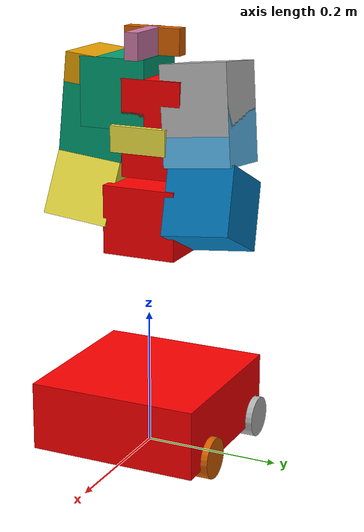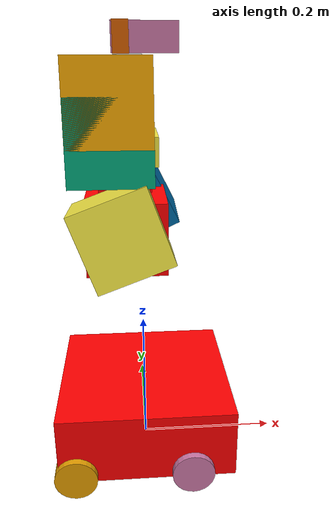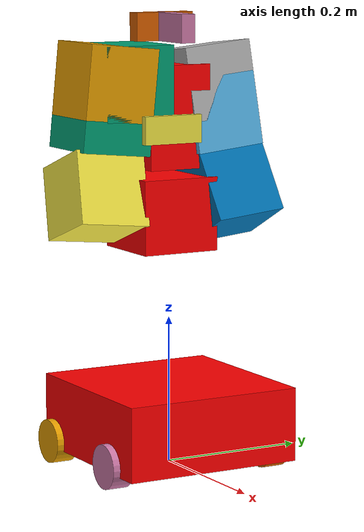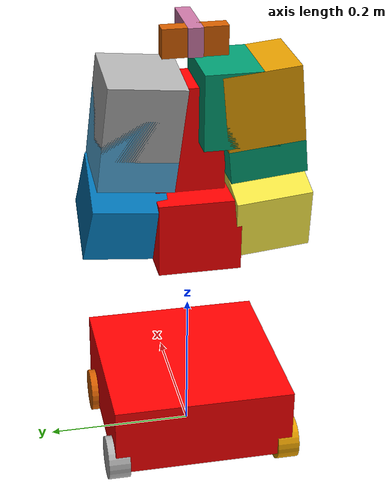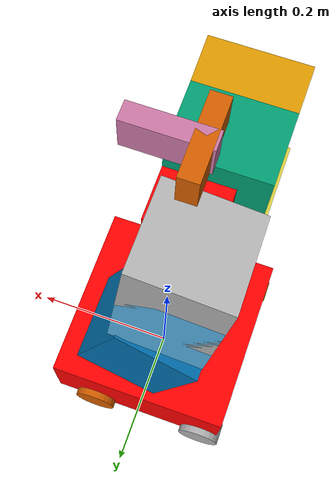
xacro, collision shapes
<?xml version="1.0" ?>
<robot name="ros_cassandra" xmlns:xacro="http://www.ros.org/wiki/xacro">

    <xacro:include filename="$(find ros_cassandra_description)/urdf/base_urdf.xacro" />

    <ros2_control name="camera_controller" type="system">
      <hardware>
        <plugin>ros_cassandra_hardware/SystemPositionOnlyHardware</plugin>
        <param name="example_param_hw_start_duration_sec">0</param>
        <param name="example_param_hw_stop_duration_sec">3.0</param>
        <param name="example_param_hw_slowdown">10</param>
      </hardware>

      <joint name="camera_servo_first_joint">
        <command_interface name="position">
          <param name="min">-1</param>
          <param name="max">1</param>
        </command_interface>
        <state_interface name="position"/>
      </joint>
      <joint name="camera_servo_second_joint">
        <command_interface name="position">
          <param name="min">-1</param>
          <param name="max">1</param>
        </command_interface>
        <state_interface name="position"/>
      </joint>
    </ros2_control>

    <ros2_control name="diff_drive_controller" type="system">
        <hardware>
          <plugin>mock_components/GenericSystem</plugin>
          <param name="calculate_dynamics">true</param>
        </hardware>
      <joint name="joint_left_wheel">
        <command_interface name="velocity"/>
        <state_interface name="position"/>
        <state_interface name="velocity"/>
      </joint>
      <joint name="joint_right_wheel">
        <command_interface name="velocity"/>
        <state_interface name="position"/>
        <state_interface name="velocity"/>
      </joint>
    </ros2_control>

</robot>

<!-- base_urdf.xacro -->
<robot xmlns:xacro="http://www.ros.org/wiki/xacro">
    <xacro:arg
        name="mesh_base_url"
        default="package://ros_cassandra_description/meshes"
    />
    <link name="base_link"></link>

    <!-- Link - chassis -->
    <link name="link_chassis">
        <visual>
            <origin xyz="-0.065 -0.013 0.2" rpy="1.57 0 1.57"/>
            <geometry>
                <mesh filename="$(arg mesh_base_url)/body.stl" scale="0.00111 0.00111 0.0011"/>
            </geometry>
            <material name="Red">
                <color rgba="1 0 0 1" />
            </material>
        </visual>

        <collision>
            <origin xyz="0 0 -0.08" rpy="0 0 0"/>
            <geometry>
                <box size="0.25 0.25 0.1" />
            </geometry>
        </collision>

        <inertial>
            <mass value="10"/>
            <origin rpy="0 0 0" xyz="0 0 0"/>
            <inertia ixx="0.1" ixy="0" ixz="0" iyy="0.1" iyz="0" izz="0.1"/>
        </inertial>
    </link>

    <joint name="base_link_joint" type="fixed">
        <origin rpy="0 0 0" xyz="0 0 0.142" />
        <parent link="base_link" />
        <child link="link_chassis" />
    </joint>

    <link name="lower_torso">
        <visual>
            <origin xyz="-0.07 -0.013 -0.02" rpy="1.57 0 1.57"/>
            <geometry>
                <mesh filename="$(arg mesh_base_url)/lower_torso.stl" scale="0.00111 0.00111 0.0011"/>
            </geometry>
            <material name="Black">
                <color rgba="1 0 0 1" />
            </material>
        </visual>

        <collision>
            <origin xyz="-0.02 0 -0.02" rpy="0 0 0"/>
            <geometry>
                <box size="0.11 0.11 0.1" />
            </geometry>
        </collision>

        <inertial>
            <mass value="10"/>
            <origin rpy="0 0 0" xyz="0 0 0"/>
            <inertia ixx="0.1" ixy="0" ixz="0" iyy="0.1" iyz="0" izz="0.1"/>
        </inertial>
    </link>

    <joint name="lower_torso_joint" type="fixed">
        <origin rpy="0 0 0" xyz="0 0 0.22" />
        <parent link="link_chassis" />
        <child link="lower_torso" />
    </joint>

     <link name="upper_torso">
        <visual>
            <origin xyz="-0.13 0 -0.042" rpy="0 0 -1.57"/>
            <geometry>
                <mesh filename="$(arg mesh_base_url)/upper_torso.stl" scale="0.00111 0.00111 0.0011"/>
            </geometry>
            <material name="Black">
                <color rgba="1 0 0 1" />
            </material>
        </visual>

        <collision>
            <origin xyz="0 0.01 0.11" rpy="0 0 0"/>
            <geometry>
                <box size="0.07 0.09 0.14" />
            </geometry>
        </collision>

        <inertial>
            <mass value="10"/>
            <origin rpy="0 0 0" xyz="0 0 0"/>
            <inertia ixx="0.1" ixy="0" ixz="0" iyy="0.1" iyz="0" izz="0.1"/>
        </inertial>
    </link>

    <joint name="upper_torso_joint" type="revolute">
        <origin xyz="-0.02 0 0" rpy="0 0 0"/>
        <parent link="lower_torso"/>
        <child link="upper_torso"/>
        <axis xyz="0 0 1"/>
        <limit lower="-1.15" upper="1.4" velocity="100" effort="100"/>
    </joint>

    <!-- Joint - pointcloud -->
    <joint name="pointcloud_link_joint" type="fixed">
        <origin rpy="0 0 0" xyz="0.051 0.0 0"/>
        <parent link="link_chassis"/>
        <child link="pointcloud_link"/>
        <axis xyz="0 0 0"/>
    </joint>

    <!-- Link - pointcloud -->
    <link name="pointcloud_link"></link>

    <!-- Joint - left wheel -->
    <joint name="joint_front_left_wheel" type="continuous">
        <origin rpy="0 0 0" xyz="0.064 0.12 -0.12"/>
        <child link="left_front_wheel"/>
        <parent link="link_chassis"/>
        <axis rpy="0 0 0" xyz="0 1 0"/>
        <limit effort="10000" velocity="1000"/>
        <joint_properties damping="1.0" friction="1.0"/>
    </joint>

    <!-- Link - left wheel -->
    <link name="left_front_wheel">
        <visual>
            <origin rpy="0 0 0" xyz="0 0 0"/>
            <geometry>
            <mesh filename="$(arg mesh_base_url)/wheel.stl" scale="0.00111 0.00111 0.0011"/>
            </geometry>
        </visual>

        <collision>
            <origin rpy="0 1.5707 1.5707" xyz="0 0 0"/>
            <geometry>
            <cylinder length="0.03" radius="0.03"/>
            </geometry>
        </collision>

        <inertial>
            <origin rpy="0 1.5707 1.5707" xyz="0 0 0"/>
            <mass value="0.05"/>
            <inertia ixx="1.531666666666667e-05" ixy="0" ixz="0" iyy="1.531666666666667e-05" iyz="0" izz="3.0625000000000006e-05"/>
        </inertial>
    </link>

    <!-- Joint - right wheel -->
    <joint name="joint_front_right_wheel" type="continuous">
        <origin rpy="0 0 0" xyz="0.064 -0.12 -0.12"/>
        <child link="right_front_wheel"/>
        <parent link="link_chassis"/>
        <axis rpy="0 0 0" xyz="0 1 0"/>
        <limit effort="10000" velocity="1000"/>
        <joint_properties damping="1.0" friction="1.0"/>
    </joint>

    <!-- Link - right wheel -->
    <link name="right_front_wheel">
        <visual>
            <origin rpy="0 0 0" xyz="0 0 0"/>
            <geometry>
            <mesh filename="$(arg mesh_base_url)/wheel.stl" scale="0.00111 0.00111 0.0011"/>
            </geometry>
        </visual>

        <collision>
            <origin rpy="0 1.5707 1.5707" xyz="0 0 0"/>
            <geometry>
            <cylinder length="0.03" radius="0.03"/>
            </geometry>
        </collision>

        <inertial>
            <origin rpy="0 1.5707 1.5707" xyz="0 0 0"/>
            <mass value="0.05"/>
            <inertia ixx="1.531666666666667e-05" ixy="0" ixz="0" iyy="1.531666666666667e-05" iyz="0" izz="3.0625000000000006e-05"/>
        </inertial>
    </link>

    <!-- Joint - left wheel -->
    <joint name="joint_rear_left_wheel" type="continuous">
        <origin rpy="0 0 0" xyz="-0.1 0.12 -0.12"/>
        <child link="left_rear_wheel"/>
        <parent link="link_chassis"/>
        <axis rpy="0 0 0" xyz="0 1 0"/>
        <limit effort="10000" velocity="1000"/>
        <joint_properties damping="1.0" friction="1.0"/>
    </joint>

    <!-- Link - left wheel -->
    <link name="left_rear_wheel">
        <visual>
            <origin rpy="0 0 0" xyz="0 0 0"/>
            <geometry>
            <mesh filename="$(arg mesh_base_url)/wheel.stl" scale="0.00111 0.00111 0.0011"/>
            </geometry>
        </visual>

        <collision>
            <origin rpy="0 1.5707 1.5707" xyz="0 0 0"/>
            <geometry>
            <cylinder length="0.03" radius="0.03"/>
            </geometry>
        </collision>

        <inertial>
            <origin rpy="0 1.5707 1.5707" xyz="0 0 0"/>
            <mass value="0.05"/>
            <inertia ixx="1.531666666666667e-05" ixy="0" ixz="0" iyy="1.531666666666667e-05" iyz="0" izz="3.0625000000000006e-05"/>
        </inertial>
    </link>

    <!-- Joint - right wheel -->
    <joint name="joint_rear_right_wheel" type="continuous">
        <origin rpy="0 0 0" xyz="-0.1 -0.12 -0.12"/>
        <child link="right_rear_wheel"/>
        <parent link="link_chassis"/>
        <axis rpy="0 0 0" xyz="0 1 0"/>
        <limit effort="10000" velocity="1000"/>
        <joint_properties damping="1.0" friction="1.0"/>
    </joint>

    <!-- Link - right wheel -->
    <link name="right_rear_wheel">
        <visual>
            <origin rpy="0 0 0" xyz="0 0 0"/>
            <geometry>
            <mesh filename="$(arg mesh_base_url)/wheel.stl" scale="0.00111 0.00111 0.0011"/>
            </geometry>
        </visual>

        <collision>
            <origin rpy="0 1.5707 1.5707" xyz="0 0 0"/>
            <geometry>
            <cylinder length="0.03" radius="0.03"/>
            </geometry>
        </collision>

        <inertial>
            <origin rpy="0 1.5707 1.5707" xyz="0 0 0"/>
            <mass value="0.05"/>
            <inertia ixx="1.531666666666667e-05" ixy="0" ixz="0" iyy="1.531666666666667e-05" iyz="0" izz="3.0625000000000006e-05"/>
        </inertial>
    </link>

    <joint name="left_shoulder_joint" type="revolute">
        <origin xyz="-0.016 0.048 0.157" rpy="0 3.14 0"/>
        <parent link="upper_torso"/>
        <child link="left_shoulder"/>
        <axis xyz="0 1 0"/>
        <limit lower="-1.15" upper="1.4" velocity="100" effort="100"/>
    </joint>

    <link name="left_shoulder">
        <collision>
            <origin xyz="0 0 0.01" rpy="0 0 0"/>
            <geometry>
                <box size="0.02 0.03 0.03" />
            </geometry>
        </collision>
        <visual>
            <origin xyz="-0.135 -0.005 0.238" rpy="3.25 0 0"/>
            <geometry>
                <mesh filename="$(arg mesh_base_url)/shoulder_base.stl" pose="0 0 0" scale="0.0011 0.00111 0.0011"/>
            </geometry>
        </visual>
        <inertial>
            <origin rpy="0 1.5707 1.5707" xyz="0 0 0"/>
            <mass value="0.05"/>
            <inertia ixx="1.531666666666667e-05" ixy="0" ixz="0" iyy="1.531666666666667e-05" iyz="0" izz="3.0625000000000006e-05"/>
        </inertial>
    </link>

    <joint name="right_shoulder_joint" type="revolute">
        <origin xyz="-0.015 -0.05 0.157" rpy="0 0 0"/>
        <parent link="upper_torso"/>
        <child link="right_shoulder"/>
        <axis xyz="0 1 0"/>
        <limit lower="-1.15" upper="1.4" velocity="100" effort="100"/>
    </joint>

    <link name="right_shoulder">
        <collision>
            <origin xyz="0 0 0" rpy="0 0 0"/>
            <geometry>
                <box size="0.1 0.1 0.1" />
            </geometry>
        </collision>
        <visual>
            <origin xyz="0.112 0.02 0.244" rpy="0.16 3.05 0"/>
            <geometry>
                <mesh filename="$(arg mesh_base_url)/shoulder_base.stl" pose="0 0 0" scale="0.0011 0.00111 0.0011"/>
            </geometry>
        </visual>
        <inertial>
            <origin rpy="0 1.5707 1.5707" xyz="0 0 0"/>
            <mass value="0.05"/>
            <inertia ixx="1.531666666666667e-05" ixy="0" ixz="0" iyy="1.531666666666667e-05" iyz="0" izz="3.0625000000000006e-05"/>
        </inertial>
    </link>

    <joint name="camera_joint" type="fixed">
        <parent link="upper_torso"/>
        <child link="camera_link"/>
        <origin xyz="0.034 -0.006 0.095" rpy="0 0 0"/>
    </joint>

    <link name="camera_link">
        <collision>
            <origin xyz="0 0 0" rpy="0 0 0"/>
            <geometry>
                <box size="0.02 0.085 0.038"/>
            </geometry>
        </collision>
        <visual>
            <origin rpy="0 3.14 -1.57" xyz="-0.22 -0.02 -0.04"/>
            <geometry>
                <mesh filename="$(arg mesh_base_url)/camera.stl" pose="0 0 0" scale="0.00111 0.00111 0.0011"/>
            </geometry>
        </visual>
        <inertial>
            <origin rpy="0 0 1.5707" xyz="0 0 0"/>
            <mass value="0.05"/>
            <inertia ixx="1.531666666666667e-05" ixy="0" ixz="0" iyy="1.531666666666667e-05" iyz="0" izz="3.0625000000000006e-05"/>
        </inertial>
    </link>

    <joint name="head_yaw_joint" type="revolute">
        <parent link="upper_torso"/>
        <child link="head_yaw_link"/>
        <origin xyz="0 0 0.23" rpy="0 0 0"/>
        <axis xyz="0 0 1"/>
        <limit lower="-1.0" upper="1.0" velocity="2.0" effort="20"/>
    </joint>

    <link name="head_yaw_link">
        <inertial>
            <origin xyz="0 0 0" rpy="0 0 0"/>
            <mass value="0.001"/>
            <inertia ixx="0.000001" ixy="0" ixz="0"
                     iyy="0.000001" iyz="0" izz="0.000001"/>
        </inertial>
    </link>

    <joint name="head_pitch_joint" type="revolute">
        <parent link="head_yaw_link"/>
        <child link="head_link"/>
        <origin xyz="0 0 0" rpy="0 0 0"/>
        <axis xyz="0 1 0"/>
        <limit lower="-0.8" upper="0.8" velocity="2.0" effort="20"/>
    </joint>

    <link name="head_link">
        <collision>
            <origin xyz="0 0 0" rpy="0 0 0"/>
            <geometry>
                <box size="0.02 0.085 0.038"/>
            </geometry>
        </collision>
        <visual>
            <origin rpy="1.57 0 1.57" xyz="-0.08 -0.013 -0.31"/>
            <geometry>
                <mesh filename="$(arg mesh_base_url)/head.stl" pose="0 0 0" scale="0.00111 0.00111 0.0011"/>
            </geometry>
        </visual>
        <inertial>
            <origin rpy="0 0 1.5707" xyz="0 0 0"/>
            <mass value="0.05"/>
            <inertia ixx="1.531666666666667e-05" ixy="0" ixz="0" iyy="1.531666666666667e-05" iyz="0" izz="3.0625000000000006e-05"/>
        </inertial>
    </link>

    <joint name="screen_joint" type="fixed">
        <parent link="head_link"/>
        <child link="screen_link"/>
        <origin xyz="0.03 0 0" rpy="0 0 0"/>
    </joint>

    <link name="screen_link">
        <collision>
            <origin xyz="0 0 0" rpy="0 0 1.57"/>
            <geometry>
                <box size="0.02 0.085 0.038"/>
            </geometry>
        </collision>
        <visual>
            <origin rpy="0 0 1.57" xyz="0.2 0 0.22"/>
            <geometry>
                <mesh filename="$(arg mesh_base_url)/screen.stl" pose="0 0 0" scale="0.00111 0.00111 0.0011"/>
            </geometry>
        </visual>
        <inertial>
            <origin rpy="0 0 1.5707" xyz="0 0 0"/>
            <mass value="0.05"/>
            <inertia ixx="1.531666666666667e-05" ixy="0" ixz="0" iyy="1.531666666666667e-05" iyz="0" izz="3.0625000000000006e-05"/>
        </inertial>
    </link>

    <joint name="left_shoulder_low_joint" type="revolute">
        <origin xyz="0 0.027 0.005" rpy="-0.1 -0.1 0"/>
        <parent link="left_shoulder"/>
        <child link="left_shoulder_low"/>
        <axis xyz="1 0 0"/>
        <limit lower="-2.2" upper="0" velocity="100" effort="100"/>
    </joint>

    <link name="left_shoulder_low">
        <collision>
            <origin xyz="0 0 0" rpy="0 0 0"/>
            <geometry>
                <box size="0.1 0.1 0.1" />
            </geometry>
        </collision>
        <visual>
            <origin xyz="-0.004 -0.231 -0.126" rpy="-1.57 -1.57 0"/>
            <geometry>
                <mesh filename="$(arg mesh_base_url)/shoulder_low.stl" pose="0 0 0" scale="0.0011 0.00111 0.0011"/>
            </geometry>
        </visual>
        <inertial>
            <origin rpy="0 1.5707 1.5707" xyz="0 0 0"/>
            <mass value="0.05"/>
            <inertia ixx="1.531666666666667e-05" ixy="0" ixz="0" iyy="1.531666666666667e-05" iyz="0" izz="3.0625000000000006e-05"/>
        </inertial>
    </link>

    <joint name="right_shoulder_low_joint" type="revolute">
        <origin xyz="0 -0.027 0" rpy="-0.1 0 0"/>
        <parent link="right_shoulder"/>
        <child link="right_shoulder_low"/>
        <axis xyz="1 0 0"/>
        <limit lower="-2.2" upper="0" velocity="100" effort="100"/>
    </joint>

    <link name="right_shoulder_low">
        <collision>
            <origin xyz="0 0 0" rpy="0 0 0"/>
            <geometry>
                <box size="0.1 0.1 0.1" />
            </geometry>
        </collision>
        <visual>
            <origin xyz="0.018 0.231 0.126" rpy="-1.57 1.57 3.14"/>
            <geometry>
                <mesh filename="$(arg mesh_base_url)/shoulder_low.stl" pose="0 0 0" scale="0.0011 0.00111 0.0011"/>
            </geometry>
        </visual>
        <inertial>
            <origin rpy="0 1.5707 1.5707" xyz="0 0 0"/>
            <mass value="0.05"/>
            <inertia ixx="1.531666666666667e-05" ixy="0" ixz="0" iyy="1.531666666666667e-05" iyz="0" izz="3.0625000000000006e-05"/>
        </inertial>
    </link>

    <joint name="left_bicep_joint" type="revolute">
        <origin xyz="0 0 0.043" rpy="0 0 0"/>
        <parent link="left_shoulder_low"/>
        <child link="left_bicep"/>
        <axis xyz="0 0 1"/>
        <limit lower="-1.7" upper="0.5" velocity="100" effort="100"/>
    </joint>

    <link name="left_bicep">
        <collision>
            <origin xyz="0 0 0" rpy="0 0 0"/>
            <geometry>
                <box size="0.1 0.1 0.1" />
            </geometry>
        </collision>
        <visual>
            <origin xyz="0.222 0.01 -0.17" rpy="0 -1.57 0"/>
            <geometry>
                <mesh filename="$(arg mesh_base_url)/bicep.stl" pose="0 0 0" scale="0.0011 0.00111 0.0011"/>
            </geometry>
        </visual>
        <inertial>
            <origin rpy="0 1.5707 1.5707" xyz="0 0 0"/>
            <mass value="0.05"/>
            <inertia ixx="1.531666666666667e-05" ixy="0" ixz="0" iyy="1.531666666666667e-05" iyz="0" izz="3.0625000000000006e-05"/>
        </inertial>
    </link>

    <joint name="right_bicep_joint" type="revolute">
        <origin xyz="0 0 -0.043" rpy="0 0 0"/>
        <parent link="right_shoulder_low"/>
        <child link="right_bicep"/>
        <axis xyz="0 0 1"/>
        <limit lower="-1.7" upper="0.5" velocity="100" effort="100"/>
    </joint>

    <link name="right_bicep">
        <collision>
            <origin xyz="0 0 0" rpy="0 0 0"/>
            <geometry>
                <box size="0.1 0.1 0.1" />
            </geometry>
        </collision>
        <visual>
            <origin xyz="-0.224 0.007 0.17" rpy="0 1.57 0"/>
            <geometry>
                <mesh filename="$(arg mesh_base_url)/bicep.stl" pose="0 0 0" scale="0.0011 0.00111 0.0011"/>
            </geometry>
        </visual>
        <inertial>
            <origin rpy="0 1.5707 1.5707" xyz="0 0 0"/>
            <mass value="0.05"/>
            <inertia ixx="1.531666666666667e-05" ixy="0" ixz="0" iyy="1.531666666666667e-05" iyz="0" izz="3.0625000000000006e-05"/>
        </inertial>
    </link>

    <joint name="right_arm_joint" type="revolute">
        <origin xyz="0.01 -0.005 -0.11" rpy="0 -0.35 0"/>
        <parent link="right_bicep"/>
        <child link="right_arm"/>
        <axis xyz="0 1 0"/>
        <limit lower="-2.2" upper="0" velocity="100" effort="100"/>
    </joint>

    <link name="right_arm">
        <collision>
            <origin xyz="0 0 0" rpy="0 0 0"/>
            <geometry>
                <box size="0.1 0.1 0.1" />
            </geometry>
        </collision>
        <visual>
            <origin xyz="-0.234 0.026 0.28" rpy="0 -1.57 3.14"/>
            <geometry>
                <mesh filename="$(arg mesh_base_url)/right_arm.stl" pose="0 0 0" scale="0.0011 0.00111 0.0011"/>
            </geometry>
        </visual>
        <inertial>
            <origin rpy="0 1.5707 1.5707" xyz="0 0 0"/>
            <mass value="0.05"/>
            <inertia ixx="1.531666666666667e-05" ixy="0" ixz="0" iyy="1.531666666666667e-05" iyz="0" izz="3.0625000000000006e-05"/>
        </inertial>
    </link>

    <joint name="left_arm_joint" type="revolute">
        <origin xyz="-0.012 0.003 0.11" rpy="0 -0.35 0"/>
        <parent link="left_bicep"/>
        <child link="left_arm"/>
        <axis xyz="0 1 0"/>
        <limit lower="-2.2" upper="0" velocity="100" effort="100"/>
    </joint>

    <link name="left_arm">
        <collision>
            <origin xyz="0 0 0" rpy="0 0 0"/>
            <geometry>
                <box size="0.1 0.1 0.1" />
            </geometry>
        </collision>
        <visual>
            <origin xyz="0.233 0.006 -0.28" rpy="0 -1.57 0"/>
            <geometry>
                <mesh filename="$(arg mesh_base_url)/left_arm.stl" pose="0 0 0" scale="0.0011 0.00111 0.0011"/>
            </geometry>
        </visual>
        <inertial>
            <origin rpy="0 1.5707 1.5707" xyz="0 0 0"/>
            <mass value="0.05"/>
            <inertia ixx="1.531666666666667e-05" ixy="0" ixz="0" iyy="1.531666666666667e-05" iyz="0" izz="3.0625000000000006e-05"/>
        </inertial>
    </link>
</robot>
